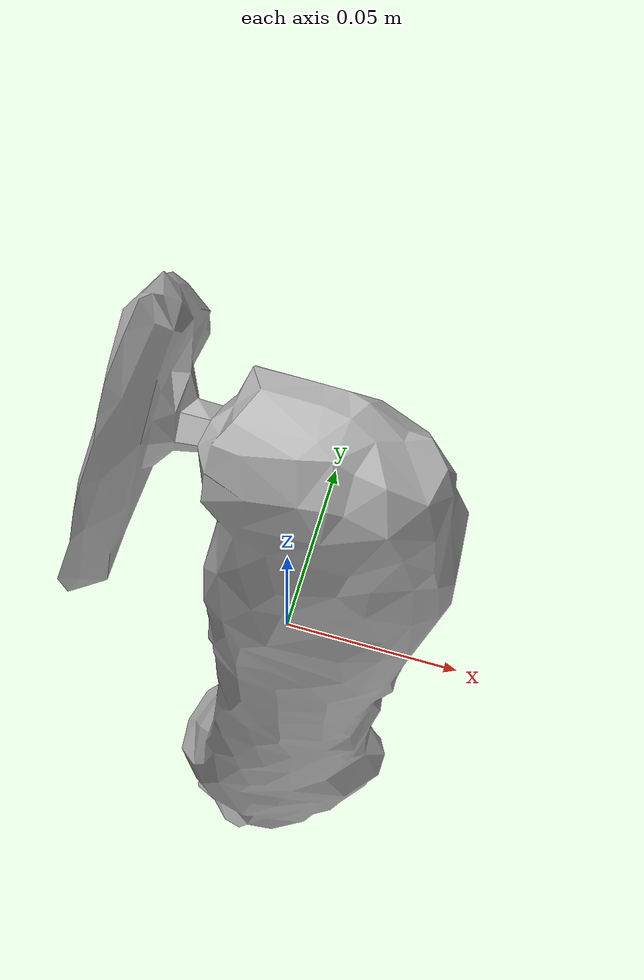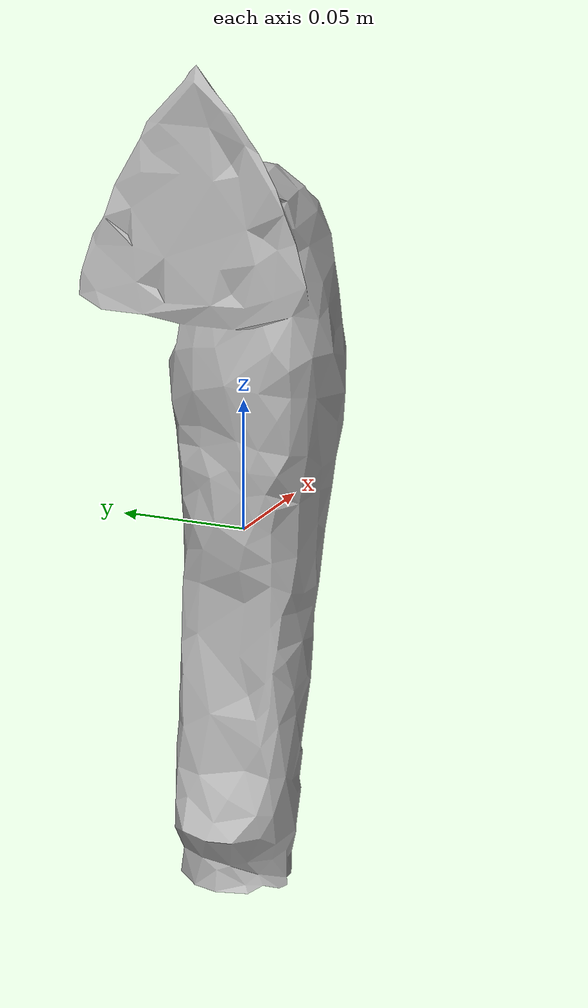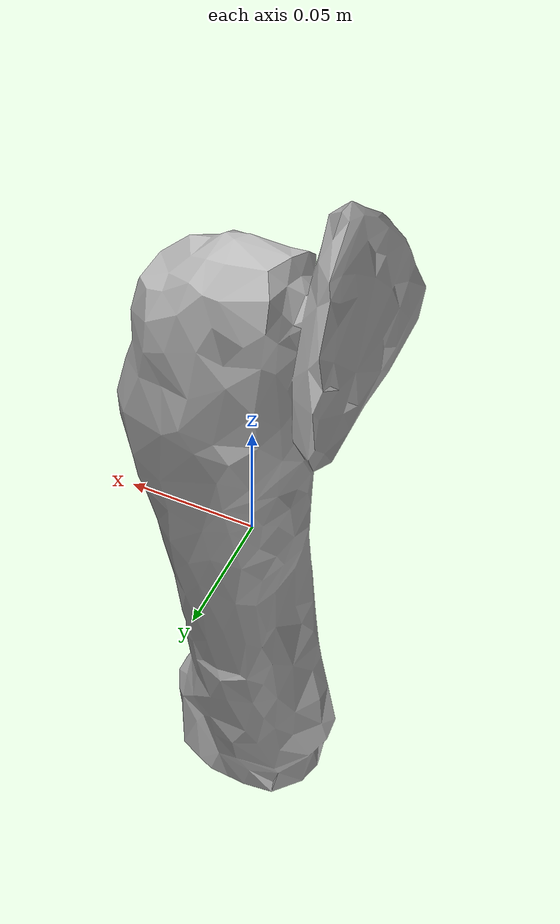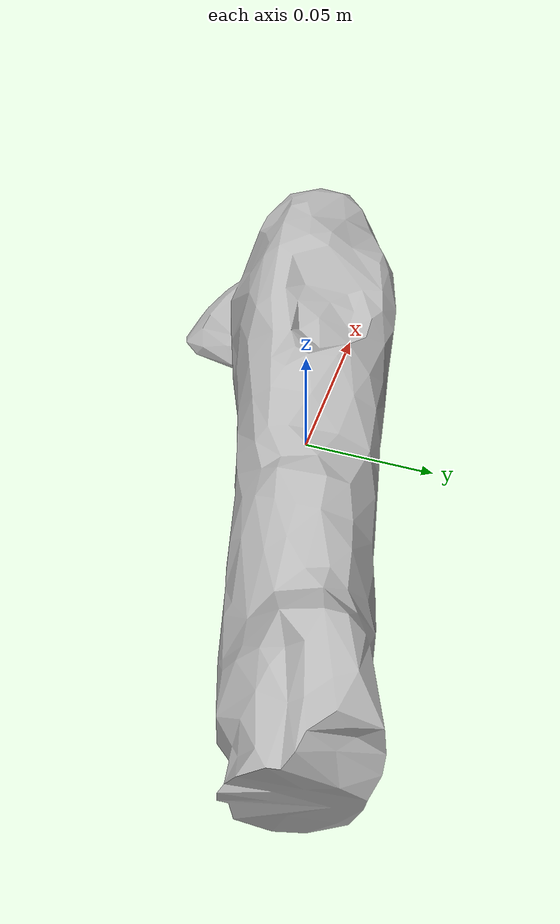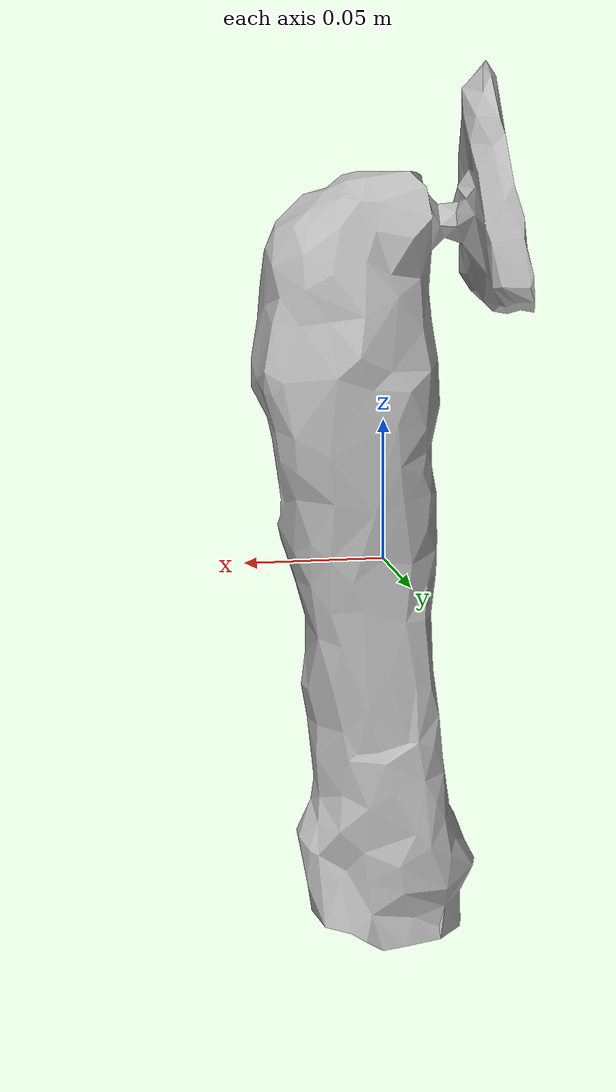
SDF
<?xml version="1.0" ?>
<sdf version="1.4">
  <model name="sander">
    <pose>0 0 0.016  0 0 0</pose>
    <static>false</static>
    <link name="body">
      <inertial>
        <pose>0.003716 -0.000965 -0.000552 0 0 0</pose>
        <mass>1</mass>
        <inertia>
          <ixx>0.419965e-2</ixx>
          <ixy>0.0</ixy>
          <ixz>0.0</ixz>
          <iyy>0.430309e-2</iyy>
          <iyz>0.0</iyz>
          <izz>0.036295e-2</izz>
        </inertia>
      </inertial>
      <visual name="visual">
        <cast_shadows>true</cast_shadows>
        <geometry>
         <mesh>
           <uri>package://costar_objects/sdf/sander/meshes/sander.obj</uri>
         </mesh>
        </geometry>
      </visual>
      <collision name="collision">
        <surface>
          <friction>
            <ode>
              <mu>0.3</mu>
              <mu2>0.3</mu2>
            </ode>
          </friction>
        </surface>
        <geometry>
         <mesh>
           <uri>package://costar_objects/sdf/sander/meshes/sander.stl</uri>
         </mesh>
        </geometry>
      </collision>
    </link>
  </model>
</sdf>
